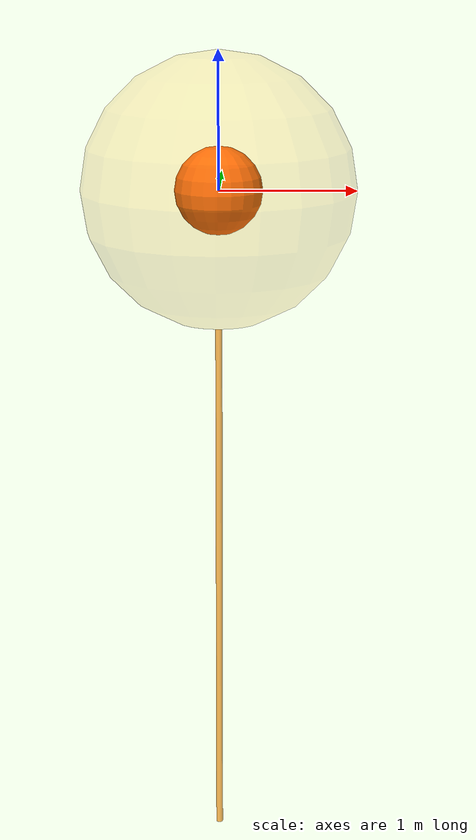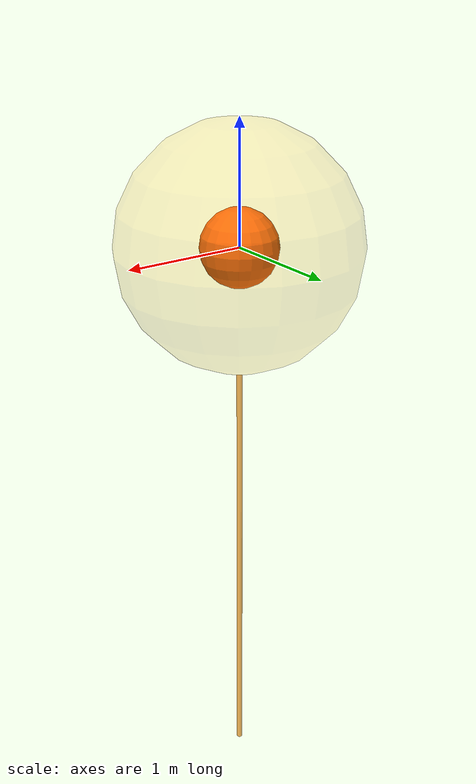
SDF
<?xml version="1.0"?>
<sdf version="1.9">
  <model name="virtual_target_marker">
    <static>true</static>
    <link name="visual_only">
      <visual name="target_sphere">
        <geometry><sphere><radius>0.32</radius></sphere></geometry>
        <material><ambient>1 0.35 0.02 1</ambient><diffuse>1 0.35 0.02 1</diffuse></material>
      </visual>
      <visual name="capture_sphere">
        <geometry><sphere><radius>1.0</radius></sphere></geometry>
        <transparency>0.78</transparency>
        <material><ambient>1 0.75 0.1 0.22</ambient><diffuse>1 0.75 0.1 0.22</diffuse></material>
      </visual>
      <visual name="vertical_reference">
        <pose>0 0 -2.5 0 0 0</pose>
        <geometry><cylinder><radius>0.025</radius><length>5.0</length></cylinder></geometry>
        <material><ambient>1 0.6 0.05 0.7</ambient><diffuse>1 0.6 0.05 0.7</diffuse></material>
      </visual>
    </link>
  </model>
</sdf>
